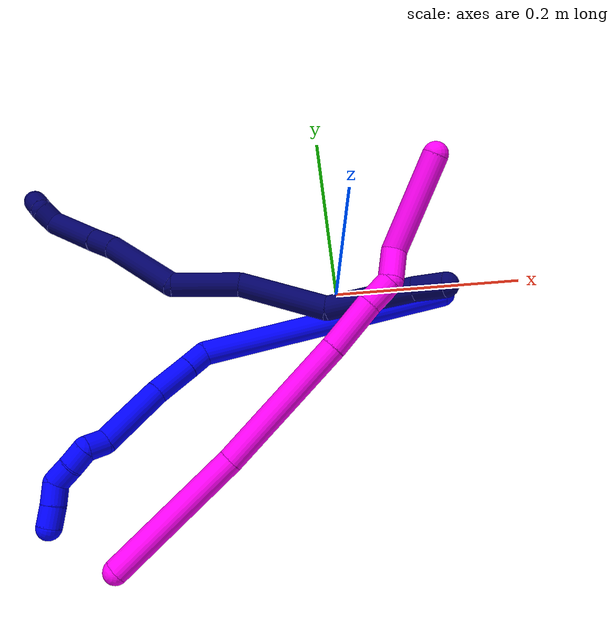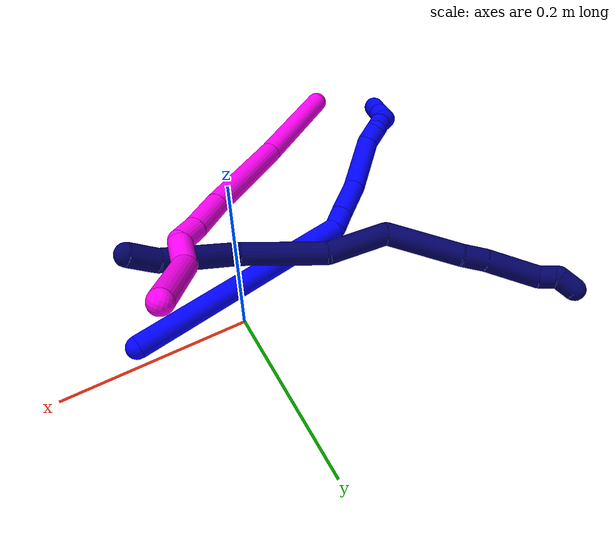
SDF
<sdf version="1.7">
 <world name="default">
  <model name="photoneo_s_sensor">
   <static>1</static>
   <pose>0 0 2 1.57079 1.57079 3.14159</pose>
   <link name="link">
    <inertial><mass>0.1</mass></inertial>
    <sensor name="sensor" type="depth">
     <update_rate>30</update_rate>
     <camera>
      <horizontal_fov>1.22</horizontal_fov>
      <image><width>1920</width><height>1200</height><format>B8G8R8</format></image>
      <clip><near>0.1</near><far>4</far></clip>
      <depth_camera><output>points</output></depth_camera>
     </camera>
     <plugin name="camera_plugin" filename="libgazebo_ros_depth_camera.so">
      <baseline>0.2</baseline>
      <alwaysOn>1</alwaysOn>
      <updateRate>0.0</updateRate>
      <cameraName>camera_ir</cameraName>
      <imageTopicName>/camera/color/image_raw</imageTopicName>
      <cameraInfoTopicName>/camera/color/camera_info</cameraInfoTopicName>
      <depthImageTopicName>/camera/depth/image_raw</depthImageTopicName>
      <depthImageCameraInfoTopicName>/camera/depth/camera_info</depthImageCameraInfoTopicName>
      <pointCloudTopicName>/camera/depth/points</pointCloudTopicName>
      <frameName>fr_optical</frameName>
      <pointCloudCutoff>0.1</pointCloudCutoff>
      <pointCloudCutoffMax>2.0</pointCloudCutoffMax>
      <distortionK1>0</distortionK1>
      <distortionK2>0</distortionK2>
      <distortionK3>0</distortionK3>
      <distortionT1>0</distortionT1>
      <distortionT2>0</distortionT2>
      <CxPrime>0</CxPrime>
      <Cx>0</Cx>
      <Cy>0</Cy>
      <focalLength>0</focalLength>
      <hackBaseline>0</hackBaseline>
     </plugin>
    </sensor>
   </link>
  </model>
  <model name="bin">
   <static>1</static>
   <link name="bottom">
    <collision name="collision-bottom">
     <pose>0 0 -0.01 0 -0 0</pose>
     <geometry><box><size>0.8 0.6 0.02</size></box></geometry>
     <surface>
      <friction><ode><mu>100</mu><mu2>100</mu2></ode></friction>
      <contact><collide_bitmask>65535</collide_bitmask></contact>
     </surface>
    </collision>
   </link>
   <link name="west_wall">
    <collision name="collision-west_wall">
     <pose>-0.41 0 0.1 0 -0 0</pose>
     <geometry><box><size>0.02 0.6 0.2</size></box></geometry>
     <surface>
      <friction><ode><mu>100</mu><mu2>100</mu2></ode></friction>
      <contact><collide_bitmask>65535</collide_bitmask></contact>
     </surface>
    </collision>
   </link>
   <link name="east_wall">
    <collision name="collision-east_wall">
     <pose>0.41 0 0.1 0 -0 0</pose>
     <geometry><box><size>0.02 0.6 0.2</size></box></geometry>
     <surface>
      <friction><ode><mu>100</mu><mu2>100</mu2></ode></friction>
      <contact><collide_bitmask>65535</collide_bitmask></contact>
     </surface>
    </collision>
   </link>
   <link name="south_wall">
    <collision name="collision-south_wall">
     <pose>0 -0.31 0.1 0 -0 0</pose>
     <geometry><box><size>0.8 0.02 0.2</size></box></geometry>
     <surface>
      <friction><ode><mu>100</mu><mu2>100</mu2></ode></friction>
      <contact><collide_bitmask>65535</collide_bitmask></contact>
     </surface>
    </collision>
   </link>
   <link name="north_wall">
    <collision name="collision-north_wall">
     <pose>0 0.31 0.1 0 -0 0</pose>
     <geometry><box><size>0.8 0.02 0.2</size></box></geometry>
     <surface>
      <friction><ode><mu>100</mu><mu2>100</mu2></ode></friction>
      <contact><collide_bitmask>65535</collide_bitmask></contact>
     </surface>
    </collision>
   </link>
  </model>
  <model name="1">
   <static>0</static>
   <link name="1">
    <collision name="collision-cylinder-e_1_1_4">
     <pose>-0.068528 -0.006735 0.110316 0.060974 -0.555024 -0.017374</pose>
     <geometry><cylinder><radius>0.0125</radius><length>0.260085</length></cylinder></geometry>
     <surface>
      <friction><ode><mu>1.16</mu><mu2>1.16</mu2><slip1>0</slip1><slip2>0</slip2></ode></friction>
      <contact><ode><kp>1e+06</kp><kd>1</kd><max_vel>0</max_vel><min_depth>0.001</min_depth></ode></contact>
     </surface>
    </collision>
    <visual name="visual-cylinder-e_1_1_4">
     <pose>-0.068528 -0.006735 0.110316 0.060974 -0.555024 -0.017374</pose>
     <geometry><cylinder><radius>0.0125</radius><length>0.260085</length></cylinder></geometry>
     <material><ambient>0 0 1 1</ambient></material>
    </visual>
    <collision name="collision-cylinder-e_2_4_5">
     <pose>-0.142774 -0.019883 0.228194 0.703377 -0.523195 -0.195857</pose>
     <geometry><cylinder><radius>0.0125</radius><length>0.022893</length></cylinder></geometry>
     <surface>
      <friction><ode><mu>1.16</mu><mu2>1.16</mu2><slip1>0</slip1><slip2>0</slip2></ode></friction>
      <contact><ode><kp>1e+06</kp><kd>1</kd><max_vel>0</max_vel><min_depth>0.001</min_depth></ode></contact>
     </surface>
    </collision>
    <visual name="visual-cylinder-e_2_4_5">
     <pose>-0.142774 -0.019883 0.228194 0.703377 -0.523195 -0.195857</pose>
     <geometry><cylinder><radius>0.0125</radius><length>0.022893</length></cylinder></geometry>
     <material><ambient>0 0 1 1</ambient></material>
    </visual>
    <collision name="collision-cylinder-e_3_5_6">
     <pose>-0.159322 -0.037486 0.24979 0.673134 -0.542824 -0.194116</pose>
     <geometry><cylinder><radius>0.0125</radius><length>0.041925</length></cylinder></geometry>
     <surface>
      <friction><ode><mu>1.16</mu><mu2>1.16</mu2><slip1>0</slip1><slip2>0</slip2></ode></friction>
      <contact><ode><kp>1e+06</kp><kd>1</kd><max_vel>0</max_vel><min_depth>0.001</min_depth></ode></contact>
     </surface>
    </collision>
    <visual name="visual-cylinder-e_3_5_6">
     <pose>-0.159322 -0.037486 0.24979 0.673134 -0.542824 -0.194116</pose>
     <geometry><cylinder><radius>0.0125</radius><length>0.041925</length></cylinder></geometry>
     <material><ambient>0 0 1 1</ambient></material>
    </visual>
    <collision name="collision-cylinder-e_4_6_7">
     <pose>-0.186532 -0.07114 0.285555 0.801989 -0.482768 -0.207994</pose>
     <geometry><cylinder><radius>0.0125</radius><length>0.070574</length></cylinder></geometry>
     <surface>
      <friction><ode><mu>1.16</mu><mu2>1.16</mu2><slip1>0</slip1><slip2>0</slip2></ode></friction>
      <contact><ode><kp>1e+06</kp><kd>1</kd><max_vel>0</max_vel><min_depth>0.001</min_depth></ode></contact>
     </surface>
    </collision>
    <visual name="visual-cylinder-e_4_6_7">
     <pose>-0.186532 -0.07114 0.285555 0.801989 -0.482768 -0.207994</pose>
     <geometry><cylinder><radius>0.0125</radius><length>0.070574</length></cylinder></geometry>
     <material><ambient>0 0 1 1</ambient></material>
    </visual>
    <collision name="collision-cylinder-e_5_7_8">
     <pose>-0.205017 -0.097925 0.316243 0.449488 -0.208418 -0.04781</pose>
     <geometry><cylinder><radius>0.0125</radius><length>0.020331</length></cylinder></geometry>
     <surface>
      <friction><ode><mu>1.16</mu><mu2>1.16</mu2><slip1>0</slip1><slip2>0</slip2></ode></friction>
      <contact><ode><kp>1e+06</kp><kd>1</kd><max_vel>0</max_vel><min_depth>0.001</min_depth></ode></contact>
     </surface>
    </collision>
    <visual name="visual-cylinder-e_5_7_8">
     <pose>-0.205017 -0.097925 0.316243 0.449488 -0.208418 -0.04781</pose>
     <geometry><cylinder><radius>0.0125</radius><length>0.020331</length></cylinder></geometry>
     <material><ambient>0 0 1 1</ambient></material>
    </visual>
    <collision name="collision-cylinder-e_6_8_9">
     <pose>-0.215464 -0.106628 0.32957 0.78667 -0.932745 -0.411867</pose>
     <geometry><cylinder><radius>0.0125</radius><length>0.020776</length></cylinder></geometry>
     <surface>
      <friction><ode><mu>1.16</mu><mu2>1.16</mu2><slip1>0</slip1><slip2>0</slip2></ode></friction>
      <contact><ode><kp>1e+06</kp><kd>1</kd><max_vel>0</max_vel><min_depth>0.001</min_depth></ode></contact>
     </surface>
    </collision>
    <visual name="visual-cylinder-e_6_8_9">
     <pose>-0.215464 -0.106628 0.32957 0.78667 -0.932745 -0.411867</pose>
     <geometry><cylinder><radius>0.0125</radius><length>0.020776</length></cylinder></geometry>
     <material><ambient>0 0 1 1</ambient></material>
    </visual>
    <collision name="collision-cylinder-e_7_9_10">
     <pose>-0.233201 -0.114118 0.338384 0.610537 -1.0471 -0.359892</pose>
     <geometry><cylinder><radius>0.0125</radius><length>0.021693</length></cylinder></geometry>
     <surface>
      <friction><ode><mu>1.16</mu><mu2>1.16</mu2><slip1>0</slip1><slip2>0</slip2></ode></friction>
      <contact><ode><kp>1e+06</kp><kd>1</kd><max_vel>0</max_vel><min_depth>0.001</min_depth></ode></contact>
     </surface>
    </collision>
    <visual name="visual-cylinder-e_7_9_10">
     <pose>-0.233201 -0.114118 0.338384 0.610537 -1.0471 -0.359892</pose>
     <geometry><cylinder><radius>0.0125</radius><length>0.021693</length></cylinder></geometry>
     <material><ambient>0 0 1 1</ambient></material>
    </visual>
    <collision name="collision-cylinder-e_8_10_11">
     <pose>-0.24944 -0.125272 0.342079 1.66365 -0.702917 -0.765175</pose>
     <geometry><cylinder><radius>0.0125</radius><length>0.021179</length></cylinder></geometry>
     <surface>
      <friction><ode><mu>1.16</mu><mu2>1.16</mu2><slip1>0</slip1><slip2>0</slip2></ode></friction>
      <contact><ode><kp>1e+06</kp><kd>1</kd><max_vel>0</max_vel><min_depth>0.001</min_depth></ode></contact>
     </surface>
    </collision>
    <visual name="visual-cylinder-e_8_10_11">
     <pose>-0.24944 -0.125272 0.342079 1.66365 -0.702917 -0.765175</pose>
     <geometry><cylinder><radius>0.0125</radius><length>0.021179</length></cylinder></geometry>
     <material><ambient>0 0 1 1</ambient></material>
    </visual>
    <collision name="collision-cylinder-e_9_11_2">
     <pose>-0.26342 -0.140705 0.341253 1.58118 -0.767898 -0.775138</pose>
     <geometry><cylinder><radius>0.0125</radius><length>0.020544</length></cylinder></geometry>
     <surface>
      <friction><ode><mu>1.16</mu><mu2>1.16</mu2><slip1>0</slip1><slip2>0</slip2></ode></friction>
      <contact><ode><kp>1e+06</kp><kd>1</kd><max_vel>0</max_vel><min_depth>0.001</min_depth></ode></contact>
     </surface>
    </collision>
    <visual name="visual-cylinder-e_9_11_2">
     <pose>-0.26342 -0.140705 0.341253 1.58118 -0.767898 -0.775138</pose>
     <geometry><cylinder><radius>0.0125</radius><length>0.020544</length></cylinder></geometry>
     <material><ambient>0 0 1 1</ambient></material>
    </visual>
    <collision name="collision-sphere-2">
     <pose>-0.270555 -0.148094 0.341177 0 -0 0</pose>
     <geometry><sphere><radius>0.0125</radius></sphere></geometry>
     <surface>
      <friction><ode><mu>1.16</mu><mu2>1.16</mu2><slip1>0</slip1><slip2>0</slip2></ode></friction>
      <contact><ode><kp>1e+06</kp><kd>1</kd><max_vel>0</max_vel><min_depth>0.001</min_depth></ode></contact>
     </surface>
    </collision>
    <visual name="visual-sphere-2">
     <pose>-0.270555 -0.148094 0.341177 0 -0 0</pose>
     <geometry><sphere><radius>0.0125</radius></sphere></geometry>
     <material><ambient>0 0 1 1</ambient></material>
    </visual>
    <collision name="collision-sphere-11">
     <pose>-0.256285 -0.133316 0.34133 0 -0 0</pose>
     <geometry><sphere><radius>0.0125</radius></sphere></geometry>
     <surface>
      <friction><ode><mu>1.16</mu><mu2>1.16</mu2><slip1>0</slip1><slip2>0</slip2></ode></friction>
      <contact><ode><kp>1e+06</kp><kd>1</kd><max_vel>0</max_vel><min_depth>0.001</min_depth></ode></contact>
     </surface>
    </collision>
    <visual name="visual-sphere-11">
     <pose>-0.256285 -0.133316 0.34133 0 -0 0</pose>
     <geometry><sphere><radius>0.0125</radius></sphere></geometry>
     <material><ambient>0 0 1 1</ambient></material>
    </visual>
    <collision name="collision-sphere-10">
     <pose>-0.242594 -0.117228 0.342828 0 -0 0</pose>
     <geometry><sphere><radius>0.0125</radius></sphere></geometry>
     <surface>
      <friction><ode><mu>1.16</mu><mu2>1.16</mu2><slip1>0</slip1><slip2>0</slip2></ode></friction>
      <contact><ode><kp>1e+06</kp><kd>1</kd><max_vel>0</max_vel><min_depth>0.001</min_depth></ode></contact>
     </surface>
    </collision>
    <visual name="visual-sphere-10">
     <pose>-0.242594 -0.117228 0.342828 0 -0 0</pose>
     <geometry><sphere><radius>0.0125</radius></sphere></geometry>
     <material><ambient>0 0 1 1</ambient></material>
    </visual>
    <collision name="collision-sphere-9">
     <pose>-0.223809 -0.111008 0.33394 0 -0 0</pose>
     <geometry><sphere><radius>0.0125</radius></sphere></geometry>
     <surface>
      <friction><ode><mu>1.16</mu><mu2>1.16</mu2><slip1>0</slip1><slip2>0</slip2></ode></friction>
      <contact><ode><kp>1e+06</kp><kd>1</kd><max_vel>0</max_vel><min_depth>0.001</min_depth></ode></contact>
     </surface>
    </collision>
    <visual name="visual-sphere-9">
     <pose>-0.223809 -0.111008 0.33394 0 -0 0</pose>
     <geometry><sphere><radius>0.0125</radius></sphere></geometry>
     <material><ambient>0 0 1 1</ambient></material>
    </visual>
    <collision name="collision-sphere-4">
     <pose>-0.137055 -0.01347 0.220632 0 -0 0</pose>
     <geometry><sphere><radius>0.0125</radius></sphere></geometry>
     <surface>
      <friction><ode><mu>1.16</mu><mu2>1.16</mu2><slip1>0</slip1><slip2>0</slip2></ode></friction>
      <contact><ode><kp>1e+06</kp><kd>1</kd><max_vel>0</max_vel><min_depth>0.001</min_depth></ode></contact>
     </surface>
    </collision>
    <visual name="visual-sphere-4">
     <pose>-0.137055 -0.01347 0.220632 0 -0 0</pose>
     <geometry><sphere><radius>0.0125</radius></sphere></geometry>
     <material><ambient>0 0 1 1</ambient></material>
    </visual>
    <collision name="collision-sphere-1">
     <geometry><sphere><radius>0.0125</radius></sphere></geometry>
     <surface>
      <friction><ode><mu>1.16</mu><mu2>1.16</mu2><slip1>0</slip1><slip2>0</slip2></ode></friction>
      <contact><ode><kp>1e+06</kp><kd>1</kd><max_vel>0</max_vel><min_depth>0.001</min_depth></ode></contact>
     </surface>
    </collision>
    <visual name="visual-sphere-1">
     <geometry><sphere><radius>0.0125</radius></sphere></geometry>
     <material><ambient>0 0 1 1</ambient></material>
    </visual>
    <collision name="collision-sphere-8">
     <pose>-0.20712 -0.102247 0.325201 0 -0 0</pose>
     <geometry><sphere><radius>0.0125</radius></sphere></geometry>
     <surface>
      <friction><ode><mu>1.16</mu><mu2>1.16</mu2><slip1>0</slip1><slip2>0</slip2></ode></friction>
      <contact><ode><kp>1e+06</kp><kd>1</kd><max_vel>0</max_vel><min_depth>0.001</min_depth></ode></contact>
     </surface>
    </collision>
    <visual name="visual-sphere-8">
     <pose>-0.20712 -0.102247 0.325201 0 -0 0</pose>
     <geometry><sphere><radius>0.0125</radius></sphere></geometry>
     <material><ambient>0 0 1 1</ambient></material>
    </visual>
    <collision name="collision-sphere-5">
     <pose>-0.148494 -0.026296 0.235756 0 -0 0</pose>
     <geometry><sphere><radius>0.0125</radius></sphere></geometry>
     <surface>
      <friction><ode><mu>1.16</mu><mu2>1.16</mu2><slip1>0</slip1><slip2>0</slip2></ode></friction>
      <contact><ode><kp>1e+06</kp><kd>1</kd><max_vel>0</max_vel><min_depth>0.001</min_depth></ode></contact>
     </surface>
    </collision>
    <visual name="visual-sphere-5">
     <pose>-0.148494 -0.026296 0.235756 0 -0 0</pose>
     <geometry><sphere><radius>0.0125</radius></sphere></geometry>
     <material><ambient>0 0 1 1</ambient></material>
    </visual>
    <collision name="collision-sphere-6">
     <pose>-0.170151 -0.048677 0.263825 0 -0 0</pose>
     <geometry><sphere><radius>0.0125</radius></sphere></geometry>
     <surface>
      <friction><ode><mu>1.16</mu><mu2>1.16</mu2><slip1>0</slip1><slip2>0</slip2></ode></friction>
      <contact><ode><kp>1e+06</kp><kd>1</kd><max_vel>0</max_vel><min_depth>0.001</min_depth></ode></contact>
     </surface>
    </collision>
    <visual name="visual-sphere-6">
     <pose>-0.170151 -0.048677 0.263825 0 -0 0</pose>
     <geometry><sphere><radius>0.0125</radius></sphere></geometry>
     <material><ambient>0 0 1 1</ambient></material>
    </visual>
    <collision name="collision-sphere-7">
     <pose>-0.202913 -0.093604 0.307285 0 -0 0</pose>
     <geometry><sphere><radius>0.0125</radius></sphere></geometry>
     <surface>
      <friction><ode><mu>1.16</mu><mu2>1.16</mu2><slip1>0</slip1><slip2>0</slip2></ode></friction>
      <contact><ode><kp>1e+06</kp><kd>1</kd><max_vel>0</max_vel><min_depth>0.001</min_depth></ode></contact>
     </surface>
    </collision>
    <visual name="visual-sphere-7">
     <pose>-0.202913 -0.093604 0.307285 0 -0 0</pose>
     <geometry><sphere><radius>0.0125</radius></sphere></geometry>
     <material><ambient>0 0 1 1</ambient></material>
    </visual>
    <inertial>
     <pose>-0.130667 -0.042049 0.198827 0 -0 0</pose>
     <mass>0.5</mass>
     <inertia>
      <ixx>0.001242</ixx>
      <ixy>0</ixy>
      <ixz>0</ixz>
      <iyy>0.001469</iyy>
      <iyz>0</iyz>
      <izz>0.000936</izz>
     </inertia>
    </inertial>
   </link>
   <pose>0.111741 -0.015909 0.011489 -0.670616 -0.923237 0.686735</pose>
  </model>
  <model name="7">
   <static>0</static>
   <link name="7">
    <collision name="collision-cylinder-e_1_1_4">
     <pose>-0.002033 0.000658 0.016039 -0.040974 -0.125989 0.002585</pose>
     <geometry><cylinder><radius>0.0125</radius><length>0.032362</length></cylinder></geometry>
     <surface>
      <friction><ode><mu>1.16</mu><mu2>1.16</mu2><slip1>0</slip1><slip2>0</slip2></ode></friction>
      <contact><ode><kp>1e+06</kp><kd>1</kd><max_vel>0</max_vel><min_depth>0.001</min_depth></ode></contact>
     </surface>
    </collision>
    <visual name="visual-cylinder-e_1_1_4">
     <pose>-0.002033 0.000658 0.016039 -0.040974 -0.125989 0.002585</pose>
     <geometry><cylinder><radius>0.0125</radius><length>0.032362</length></cylinder></geometry>
     <material><ambient>0.003922 0 0.403922 1</ambient></material>
    </visual>
    <collision name="collision-cylinder-e_2_4_5">
     <pose>-0.013185 0.013551 0.073872 -0.284819 -0.206413 0.029699</pose>
     <geometry><cylinder><radius>0.0125</radius><length>0.088985</length></cylinder></geometry>
     <surface>
      <friction><ode><mu>1.16</mu><mu2>1.16</mu2><slip1>0</slip1><slip2>0</slip2></ode></friction>
      <contact><ode><kp>1e+06</kp><kd>1</kd><max_vel>0</max_vel><min_depth>0.001</min_depth></ode></contact>
     </surface>
    </collision>
    <visual name="visual-cylinder-e_2_4_5">
     <pose>-0.013185 0.013551 0.073872 -0.284819 -0.206413 0.029699</pose>
     <geometry><cylinder><radius>0.0125</radius><length>0.088985</length></cylinder></geometry>
     <material><ambient>0.003922 0 0.403922 1</ambient></material>
    </visual>
    <collision name="collision-cylinder-e_3_5_6">
     <pose>-0.049642 0.026613 0.153347 -0.021891 -0.627527 0.007103</pose>
     <geometry><cylinder><radius>0.0125</radius><length>0.093122</length></cylinder></geometry>
     <surface>
      <friction><ode><mu>1.16</mu><mu2>1.16</mu2><slip1>0</slip1><slip2>0</slip2></ode></friction>
      <contact><ode><kp>1e+06</kp><kd>1</kd><max_vel>0</max_vel><min_depth>0.001</min_depth></ode></contact>
     </surface>
    </collision>
    <visual name="visual-cylinder-e_3_5_6">
     <pose>-0.049642 0.026613 0.153347 -0.021891 -0.627527 0.007103</pose>
     <geometry><cylinder><radius>0.0125</radius><length>0.093122</length></cylinder></geometry>
     <material><ambient>0.003922 0 0.403922 1</ambient></material>
    </visual>
    <collision name="collision-cylinder-e_4_6_7">
     <pose>-0.095591 0.039916 0.217634 -0.438551 -0.564561 0.12909</pose>
     <geometry><cylinder><radius>0.0125</radius><length>0.06957</length></cylinder></geometry>
     <surface>
      <friction><ode><mu>1.16</mu><mu2>1.16</mu2><slip1>0</slip1><slip2>0</slip2></ode></friction>
      <contact><ode><kp>1e+06</kp><kd>1</kd><max_vel>0</max_vel><min_depth>0.001</min_depth></ode></contact>
     </surface>
    </collision>
    <visual name="visual-cylinder-e_4_6_7">
     <pose>-0.095591 0.039916 0.217634 -0.438551 -0.564561 0.12909</pose>
     <geometry><cylinder><radius>0.0125</radius><length>0.06957</length></cylinder></geometry>
     <material><ambient>0.003922 0 0.403922 1</ambient></material>
    </visual>
    <collision name="collision-cylinder-e_5_7_8">
     <pose>-0.138327 0.03966 0.276856 0.372246 -0.603297 -0.117044</pose>
     <geometry><cylinder><radius>0.0125</radius><length>0.085039</length></cylinder></geometry>
     <surface>
      <friction><ode><mu>1.16</mu><mu2>1.16</mu2><slip1>0</slip1><slip2>0</slip2></ode></friction>
      <contact><ode><kp>1e+06</kp><kd>1</kd><max_vel>0</max_vel><min_depth>0.001</min_depth></ode></contact>
     </surface>
    </collision>
    <visual name="visual-cylinder-e_5_7_8">
     <pose>-0.138327 0.03966 0.276856 0.372246 -0.603297 -0.117044</pose>
     <geometry><cylinder><radius>0.0125</radius><length>0.085039</length></cylinder></geometry>
     <material><ambient>0.003922 0 0.403922 1</ambient></material>
    </visual>
    <collision name="collision-cylinder-e_6_8_9">
     <pose>-0.169182 0.024663 0.320499 0.202343 -0.538924 -0.05606</pose>
     <geometry><cylinder><radius>0.0125</radius><length>0.026232</length></cylinder></geometry>
     <surface>
      <friction><ode><mu>1.16</mu><mu2>1.16</mu2><slip1>0</slip1><slip2>0</slip2></ode></friction>
      <contact><ode><kp>1e+06</kp><kd>1</kd><max_vel>0</max_vel><min_depth>0.001</min_depth></ode></contact>
     </surface>
    </collision>
    <visual name="visual-cylinder-e_6_8_9">
     <pose>-0.169182 0.024663 0.320499 0.202343 -0.538924 -0.05606</pose>
     <geometry><cylinder><radius>0.0125</radius><length>0.026232</length></cylinder></geometry>
     <material><ambient>0.003922 0 0.403922 1</ambient></material>
    </visual>
    <collision name="collision-cylinder-e_7_9_10">
     <pose>-0.190175 0.01452 0.358224 0.287051 -0.473458 -0.069703</pose>
     <geometry><cylinder><radius>0.0125</radius><length>0.062554</length></cylinder></geometry>
     <surface>
      <friction><ode><mu>1.16</mu><mu2>1.16</mu2><slip1>0</slip1><slip2>0</slip2></ode></friction>
      <contact><ode><kp>1e+06</kp><kd>1</kd><max_vel>0</max_vel><min_depth>0.001</min_depth></ode></contact>
     </surface>
    </collision>
    <visual name="visual-cylinder-e_7_9_10">
     <pose>-0.190175 0.01452 0.358224 0.287051 -0.473458 -0.069703</pose>
     <geometry><cylinder><radius>0.0125</radius><length>0.062554</length></cylinder></geometry>
     <material><ambient>0.003922 0 0.403922 1</ambient></material>
    </visual>
    <collision name="collision-cylinder-e_8_10_11">
     <pose>-0.213625 0.004522 0.389031 0.4755 -1.10473 -0.296537</pose>
     <geometry><cylinder><radius>0.0125</radius><length>0.020572</length></cylinder></geometry>
     <surface>
      <friction><ode><mu>1.16</mu><mu2>1.16</mu2><slip1>0</slip1><slip2>0</slip2></ode></friction>
      <contact><ode><kp>1e+06</kp><kd>1</kd><max_vel>0</max_vel><min_depth>0.001</min_depth></ode></contact>
     </surface>
    </collision>
    <visual name="visual-cylinder-e_8_10_11">
     <pose>-0.213625 0.004522 0.389031 0.4755 -1.10473 -0.296537</pose>
     <geometry><cylinder><radius>0.0125</radius><length>0.020572</length></cylinder></geometry>
     <material><ambient>0.003922 0 0.403922 1</ambient></material>
    </visual>
    <collision name="collision-cylinder-e_9_11_2">
     <pose>-0.226336 -0.003887 0.401155 0.665653 -0.332804 -0.115989</pose>
     <geometry><cylinder><radius>0.0125</radius><length>0.021565</length></cylinder></geometry>
     <surface>
      <friction><ode><mu>1.16</mu><mu2>1.16</mu2><slip1>0</slip1><slip2>0</slip2></ode></friction>
      <contact><ode><kp>1e+06</kp><kd>1</kd><max_vel>0</max_vel><min_depth>0.001</min_depth></ode></contact>
     </surface>
    </collision>
    <visual name="visual-cylinder-e_9_11_2">
     <pose>-0.226336 -0.003887 0.401155 0.665653 -0.332804 -0.115989</pose>
     <geometry><cylinder><radius>0.0125</radius><length>0.021565</length></cylinder></geometry>
     <material><ambient>0.003922 0 0.403922 1</ambient></material>
    </visual>
    <collision name="collision-sphere-2">
     <pose>-0.229858 -0.01018 0.40917 0 -0 0</pose>
     <geometry><sphere><radius>0.0125</radius></sphere></geometry>
     <surface>
      <friction><ode><mu>1.16</mu><mu2>1.16</mu2><slip1>0</slip1><slip2>0</slip2></ode></friction>
      <contact><ode><kp>1e+06</kp><kd>1</kd><max_vel>0</max_vel><min_depth>0.001</min_depth></ode></contact>
     </surface>
    </collision>
    <visual name="visual-sphere-2">
     <pose>-0.229858 -0.01018 0.40917 0 -0 0</pose>
     <geometry><sphere><radius>0.0125</radius></sphere></geometry>
     <material><ambient>0.003922 0 0.403922 1</ambient></material>
    </visual>
    <collision name="collision-sphere-11">
     <pose>-0.222813 0.002406 0.39314 0 -0 0</pose>
     <geometry><sphere><radius>0.0125</radius></sphere></geometry>
     <surface>
      <friction><ode><mu>1.16</mu><mu2>1.16</mu2><slip1>0</slip1><slip2>0</slip2></ode></friction>
      <contact><ode><kp>1e+06</kp><kd>1</kd><max_vel>0</max_vel><min_depth>0.001</min_depth></ode></contact>
     </surface>
    </collision>
    <visual name="visual-sphere-11">
     <pose>-0.222813 0.002406 0.39314 0 -0 0</pose>
     <geometry><sphere><radius>0.0125</radius></sphere></geometry>
     <material><ambient>0.003922 0 0.403922 1</ambient></material>
    </visual>
    <collision name="collision-sphere-10">
     <pose>-0.204436 0.006638 0.384921 0 -0 0</pose>
     <geometry><sphere><radius>0.0125</radius></sphere></geometry>
     <surface>
      <friction><ode><mu>1.16</mu><mu2>1.16</mu2><slip1>0</slip1><slip2>0</slip2></ode></friction>
      <contact><ode><kp>1e+06</kp><kd>1</kd><max_vel>0</max_vel><min_depth>0.001</min_depth></ode></contact>
     </surface>
    </collision>
    <visual name="visual-sphere-10">
     <pose>-0.204436 0.006638 0.384921 0 -0 0</pose>
     <geometry><sphere><radius>0.0125</radius></sphere></geometry>
     <material><ambient>0.003922 0 0.403922 1</ambient></material>
    </visual>
    <collision name="collision-sphere-9">
     <pose>-0.175914 0.022401 0.331527 0 -0 0</pose>
     <geometry><sphere><radius>0.0125</radius></sphere></geometry>
     <surface>
      <friction><ode><mu>1.16</mu><mu2>1.16</mu2><slip1>0</slip1><slip2>0</slip2></ode></friction>
      <contact><ode><kp>1e+06</kp><kd>1</kd><max_vel>0</max_vel><min_depth>0.001</min_depth></ode></contact>
     </surface>
    </collision>
    <visual name="visual-sphere-9">
     <pose>-0.175914 0.022401 0.331527 0 -0 0</pose>
     <geometry><sphere><radius>0.0125</radius></sphere></geometry>
     <material><ambient>0.003922 0 0.403922 1</ambient></material>
    </visual>
    <collision name="collision-sphere-4">
     <pose>-0.004067 0.001315 0.032079 0 -0 0</pose>
     <geometry><sphere><radius>0.0125</radius></sphere></geometry>
     <surface>
      <friction><ode><mu>1.16</mu><mu2>1.16</mu2><slip1>0</slip1><slip2>0</slip2></ode></friction>
      <contact><ode><kp>1e+06</kp><kd>1</kd><max_vel>0</max_vel><min_depth>0.001</min_depth></ode></contact>
     </surface>
    </collision>
    <visual name="visual-sphere-4">
     <pose>-0.004067 0.001315 0.032079 0 -0 0</pose>
     <geometry><sphere><radius>0.0125</radius></sphere></geometry>
     <material><ambient>0.003922 0 0.403922 1</ambient></material>
    </visual>
    <collision name="collision-sphere-1">
     <geometry><sphere><radius>0.0125</radius></sphere></geometry>
     <surface>
      <friction><ode><mu>1.16</mu><mu2>1.16</mu2><slip1>0</slip1><slip2>0</slip2></ode></friction>
      <contact><ode><kp>1e+06</kp><kd>1</kd><max_vel>0</max_vel><min_depth>0.001</min_depth></ode></contact>
     </surface>
    </collision>
    <visual name="visual-sphere-1">
     <geometry><sphere><radius>0.0125</radius></sphere></geometry>
     <material><ambient>0.003922 0 0.403922 1</ambient></material>
    </visual>
    <collision name="collision-sphere-8">
     <pose>-0.162451 0.026925 0.309472 0 -0 0</pose>
     <geometry><sphere><radius>0.0125</radius></sphere></geometry>
     <surface>
      <friction><ode><mu>1.16</mu><mu2>1.16</mu2><slip1>0</slip1><slip2>0</slip2></ode></friction>
      <contact><ode><kp>1e+06</kp><kd>1</kd><max_vel>0</max_vel><min_depth>0.001</min_depth></ode></contact>
     </surface>
    </collision>
    <visual name="visual-sphere-8">
     <pose>-0.162451 0.026925 0.309472 0 -0 0</pose>
     <geometry><sphere><radius>0.0125</radius></sphere></geometry>
     <material><ambient>0.003922 0 0.403922 1</ambient></material>
    </visual>
    <collision name="collision-sphere-5">
     <pose>-0.022304 0.025788 0.115666 0 -0 0</pose>
     <geometry><sphere><radius>0.0125</radius></sphere></geometry>
     <surface>
      <friction><ode><mu>1.16</mu><mu2>1.16</mu2><slip1>0</slip1><slip2>0</slip2></ode></friction>
      <contact><ode><kp>1e+06</kp><kd>1</kd><max_vel>0</max_vel><min_depth>0.001</min_depth></ode></contact>
     </surface>
    </collision>
    <visual name="visual-sphere-5">
     <pose>-0.022304 0.025788 0.115666 0 -0 0</pose>
     <geometry><sphere><radius>0.0125</radius></sphere></geometry>
     <material><ambient>0.003922 0 0.403922 1</ambient></material>
    </visual>
    <collision name="collision-sphere-6">
     <pose>-0.07698 0.027438 0.191028 0 -0 0</pose>
     <geometry><sphere><radius>0.0125</radius></sphere></geometry>
     <surface>
      <friction><ode><mu>1.16</mu><mu2>1.16</mu2><slip1>0</slip1><slip2>0</slip2></ode></friction>
      <contact><ode><kp>1e+06</kp><kd>1</kd><max_vel>0</max_vel><min_depth>0.001</min_depth></ode></contact>
     </surface>
    </collision>
    <visual name="visual-sphere-6">
     <pose>-0.07698 0.027438 0.191028 0 -0 0</pose>
     <geometry><sphere><radius>0.0125</radius></sphere></geometry>
     <material><ambient>0.003922 0 0.403922 1</ambient></material>
    </visual>
    <collision name="collision-sphere-7">
     <pose>-0.114203 0.052395 0.24424 0 -0 0</pose>
     <geometry><sphere><radius>0.0125</radius></sphere></geometry>
     <surface>
      <friction><ode><mu>1.16</mu><mu2>1.16</mu2><slip1>0</slip1><slip2>0</slip2></ode></friction>
      <contact><ode><kp>1e+06</kp><kd>1</kd><max_vel>0</max_vel><min_depth>0.001</min_depth></ode></contact>
     </surface>
    </collision>
    <visual name="visual-sphere-7">
     <pose>-0.114203 0.052395 0.24424 0 -0 0</pose>
     <geometry><sphere><radius>0.0125</radius></sphere></geometry>
     <material><ambient>0.003922 0 0.403922 1</ambient></material>
    </visual>
    <inertial>
     <pose>-0.09977 0.022839 0.215053 0 -0 0</pose>
     <mass>0.5</mass>
     <inertia>
      <ixx>0.000198</ixx>
      <ixy>0</ixy>
      <ixz>0</ixz>
      <iyy>0.00024</iyy>
      <iyz>0</iyz>
      <izz>0.000142</izz>
     </inertia>
    </inertial>
   </link>
   <pose>0.091602 -0.053043 0.106734 2.74812 0.815431 -0.758613</pose>
  </model>
  <model name="10">
   <static>0</static>
   <link name="10">
    <collision name="collision-cylinder-e_1_1_4">
     <pose>-0.015154 0.057183 0.04118 -0.946679 -0.211818 0.108788</pose>
     <geometry><cylinder><radius>0.0125</radius><length>0.144156</length></cylinder></geometry>
     <surface>
      <friction><ode><mu>1.16</mu><mu2>1.16</mu2><slip1>0</slip1><slip2>0</slip2></ode></friction>
      <contact><ode><kp>1e+06</kp><kd>1</kd><max_vel>0</max_vel><min_depth>0.001</min_depth></ode></contact>
     </surface>
    </collision>
    <visual name="visual-cylinder-e_1_1_4">
     <pose>-0.015154 0.057183 0.04118 -0.946679 -0.211818 0.108788</pose>
     <geometry><cylinder><radius>0.0125</radius><length>0.144156</length></cylinder></geometry>
     <material><ambient>1 0 0.964706 1</ambient></material>
    </visual>
    <collision name="collision-cylinder-e_2_4_5">
     <pose>-0.045133 0.175265 0.116205 -1.06354 -0.209673 0.123646</pose>
     <geometry><cylinder><radius>0.0125</radius><length>0.142465</length></cylinder></geometry>
     <surface>
      <friction><ode><mu>1.16</mu><mu2>1.16</mu2><slip1>0</slip1><slip2>0</slip2></ode></friction>
      <contact><ode><kp>1e+06</kp><kd>1</kd><max_vel>0</max_vel><min_depth>0.001</min_depth></ode></contact>
     </surface>
    </collision>
    <visual name="visual-cylinder-e_2_4_5">
     <pose>-0.045133 0.175265 0.116205 -1.06354 -0.209673 0.123646</pose>
     <geometry><cylinder><radius>0.0125</radius><length>0.142465</length></cylinder></geometry>
     <material><ambient>1 0 0.964706 1</ambient></material>
    </visual>
    <collision name="collision-cylinder-e_3_5_6">
     <pose>-0.064219 0.259509 0.162564 -1.07873 -0.159431 0.09556</pose>
     <geometry><cylinder><radius>0.0125</radius><length>0.053654</length></cylinder></geometry>
     <surface>
      <friction><ode><mu>1.16</mu><mu2>1.16</mu2><slip1>0</slip1><slip2>0</slip2></ode></friction>
      <contact><ode><kp>1e+06</kp><kd>1</kd><max_vel>0</max_vel><min_depth>0.001</min_depth></ode></contact>
     </surface>
    </collision>
    <visual name="visual-cylinder-e_3_5_6">
     <pose>-0.064219 0.259509 0.162564 -1.07873 -0.159431 0.09556</pose>
     <geometry><cylinder><radius>0.0125</radius><length>0.053654</length></cylinder></geometry>
     <material><ambient>1 0 0.964706 1</ambient></material>
    </visual>
    <collision name="collision-cylinder-e_4_6_7">
     <pose>-0.072026 0.295503 0.181669 -1.09044 -0.243767 0.148321</pose>
     <geometry><cylinder><radius>0.0125</radius><length>0.029399</length></cylinder></geometry>
     <surface>
      <friction><ode><mu>1.16</mu><mu2>1.16</mu2><slip1>0</slip1><slip2>0</slip2></ode></friction>
      <contact><ode><kp>1e+06</kp><kd>1</kd><max_vel>0</max_vel><min_depth>0.001</min_depth></ode></contact>
     </surface>
    </collision>
    <visual name="visual-cylinder-e_4_6_7">
     <pose>-0.072026 0.295503 0.181669 -1.09044 -0.243767 0.148321</pose>
     <geometry><cylinder><radius>0.0125</radius><length>0.029399</length></cylinder></geometry>
     <material><ambient>1 0 0.964706 1</ambient></material>
    </visual>
    <collision name="collision-cylinder-e_5_7_8">
     <pose>-0.06822 0.320595 0.195751 -1.02891 0.468736 -0.268279</pose>
     <geometry><cylinder><radius>0.0125</radius><length>0.032555</length></cylinder></geometry>
     <surface>
      <friction><ode><mu>1.16</mu><mu2>1.16</mu2><slip1>0</slip1><slip2>0</slip2></ode></friction>
      <contact><ode><kp>1e+06</kp><kd>1</kd><max_vel>0</max_vel><min_depth>0.001</min_depth></ode></contact>
     </surface>
    </collision>
    <visual name="visual-cylinder-e_5_7_8">
     <pose>-0.06822 0.320595 0.195751 -1.02891 0.468736 -0.268279</pose>
     <geometry><cylinder><radius>0.0125</radius><length>0.032555</length></cylinder></geometry>
     <material><ambient>1 0 0.964706 1</ambient></material>
    </visual>
    <collision name="collision-cylinder-e_6_8_2">
     <pose>-0.062213 0.38136 0.210506 -1.42155 -0.027551 0.023719</pose>
     <geometry><cylinder><radius>0.0125</radius><length>0.097771</length></cylinder></geometry>
     <surface>
      <friction><ode><mu>1.16</mu><mu2>1.16</mu2><slip1>0</slip1><slip2>0</slip2></ode></friction>
      <contact><ode><kp>1e+06</kp><kd>1</kd><max_vel>0</max_vel><min_depth>0.001</min_depth></ode></contact>
     </surface>
    </collision>
    <visual name="visual-cylinder-e_6_8_2">
     <pose>-0.062213 0.38136 0.210506 -1.42155 -0.027551 0.023719</pose>
     <geometry><cylinder><radius>0.0125</radius><length>0.097771</length></cylinder></geometry>
     <material><ambient>1 0 0.964706 1</ambient></material>
    </visual>
    <collision name="collision-sphere-2">
     <pose>-0.06356 0.429684 0.217772 0 -0 0</pose>
     <geometry><sphere><radius>0.0125</radius></sphere></geometry>
     <surface>
      <friction><ode><mu>1.16</mu><mu2>1.16</mu2><slip1>0</slip1><slip2>0</slip2></ode></friction>
      <contact><ode><kp>1e+06</kp><kd>1</kd><max_vel>0</max_vel><min_depth>0.001</min_depth></ode></contact>
     </surface>
    </collision>
    <visual name="visual-sphere-2">
     <pose>-0.06356 0.429684 0.217772 0 -0 0</pose>
     <geometry><sphere><radius>0.0125</radius></sphere></geometry>
     <material><ambient>1 0 0.964706 1</ambient></material>
    </visual>
    <collision name="collision-sphere-4">
     <pose>-0.030307 0.114365 0.08236 0 -0 0</pose>
     <geometry><sphere><radius>0.0125</radius></sphere></geometry>
     <surface>
      <friction><ode><mu>1.16</mu><mu2>1.16</mu2><slip1>0</slip1><slip2>0</slip2></ode></friction>
      <contact><ode><kp>1e+06</kp><kd>1</kd><max_vel>0</max_vel><min_depth>0.001</min_depth></ode></contact>
     </surface>
    </collision>
    <visual name="visual-sphere-4">
     <pose>-0.030307 0.114365 0.08236 0 -0 0</pose>
     <geometry><sphere><radius>0.0125</radius></sphere></geometry>
     <material><ambient>1 0 0.964706 1</ambient></material>
    </visual>
    <collision name="collision-sphere-1">
     <geometry><sphere><radius>0.0125</radius></sphere></geometry>
     <surface>
      <friction><ode><mu>1.16</mu><mu2>1.16</mu2><slip1>0</slip1><slip2>0</slip2></ode></friction>
      <contact><ode><kp>1e+06</kp><kd>1</kd><max_vel>0</max_vel><min_depth>0.001</min_depth></ode></contact>
     </surface>
    </collision>
    <visual name="visual-sphere-1">
     <geometry><sphere><radius>0.0125</radius></sphere></geometry>
     <material><ambient>1 0 0.964706 1</ambient></material>
    </visual>
    <collision name="collision-sphere-8">
     <pose>-0.060866 0.333036 0.20324 0 -0 0</pose>
     <geometry><sphere><radius>0.0125</radius></sphere></geometry>
     <surface>
      <friction><ode><mu>1.16</mu><mu2>1.16</mu2><slip1>0</slip1><slip2>0</slip2></ode></friction>
      <contact><ode><kp>1e+06</kp><kd>1</kd><max_vel>0</max_vel><min_depth>0.001</min_depth></ode></contact>
     </surface>
    </collision>
    <visual name="visual-sphere-8">
     <pose>-0.060866 0.333036 0.20324 0 -0 0</pose>
     <geometry><sphere><radius>0.0125</radius></sphere></geometry>
     <material><ambient>1 0 0.964706 1</ambient></material>
    </visual>
    <collision name="collision-sphere-5">
     <pose>-0.05996 0.236164 0.15005 0 -0 0</pose>
     <geometry><sphere><radius>0.0125</radius></sphere></geometry>
     <surface>
      <friction><ode><mu>1.16</mu><mu2>1.16</mu2><slip1>0</slip1><slip2>0</slip2></ode></friction>
      <contact><ode><kp>1e+06</kp><kd>1</kd><max_vel>0</max_vel><min_depth>0.001</min_depth></ode></contact>
     </surface>
    </collision>
    <visual name="visual-sphere-5">
     <pose>-0.05996 0.236164 0.15005 0 -0 0</pose>
     <geometry><sphere><radius>0.0125</radius></sphere></geometry>
     <material><ambient>1 0 0.964706 1</ambient></material>
    </visual>
    <collision name="collision-sphere-6">
     <pose>-0.068478 0.282853 0.175078 0 -0 0</pose>
     <geometry><sphere><radius>0.0125</radius></sphere></geometry>
     <surface>
      <friction><ode><mu>1.16</mu><mu2>1.16</mu2><slip1>0</slip1><slip2>0</slip2></ode></friction>
      <contact><ode><kp>1e+06</kp><kd>1</kd><max_vel>0</max_vel><min_depth>0.001</min_depth></ode></contact>
     </surface>
    </collision>
    <visual name="visual-sphere-6">
     <pose>-0.068478 0.282853 0.175078 0 -0 0</pose>
     <geometry><sphere><radius>0.0125</radius></sphere></geometry>
     <material><ambient>1 0 0.964706 1</ambient></material>
    </visual>
    <collision name="collision-sphere-7">
     <pose>-0.075573 0.308154 0.188261 0 -0 0</pose>
     <geometry><sphere><radius>0.0125</radius></sphere></geometry>
     <surface>
      <friction><ode><mu>1.16</mu><mu2>1.16</mu2><slip1>0</slip1><slip2>0</slip2></ode></friction>
      <contact><ode><kp>1e+06</kp><kd>1</kd><max_vel>0</max_vel><min_depth>0.001</min_depth></ode></contact>
     </surface>
    </collision>
    <visual name="visual-sphere-7">
     <pose>-0.075573 0.308154 0.188261 0 -0 0</pose>
     <geometry><sphere><radius>0.0125</radius></sphere></geometry>
     <material><ambient>1 0 0.964706 1</ambient></material>
    </visual>
    <inertial>
     <pose>-0.044962 0.207093 0.127017 0 -0 0</pose>
     <mass>0.5</mass>
     <inertia>
      <ixx>0.000645</ixx>
      <ixy>0</ixy>
      <ixz>0</ixz>
      <iyy>0.000394</iyy>
      <iyz>0</iyz>
      <izz>-0.000388</izz>
     </inertia>
    </inertial>
   </link>
   <pose>-0.234366 -0.272279 0.012734 2.39104 0.348 2.39335</pose>
  </model>
 </world>
</sdf>
